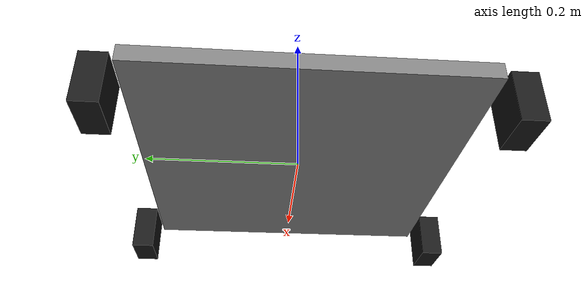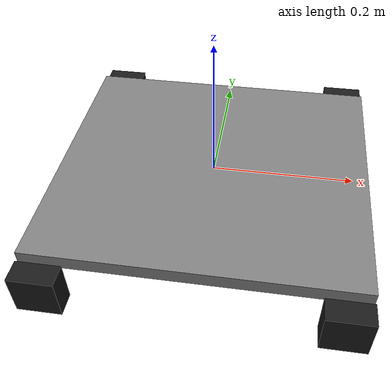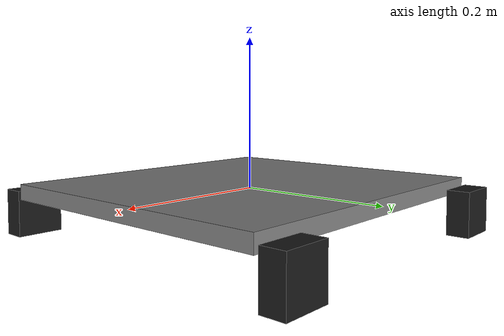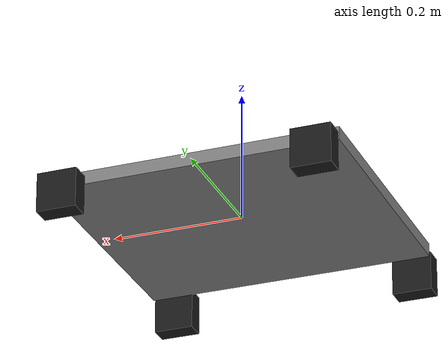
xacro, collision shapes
<?xml version="1.0"?>
<robot name="mecanumbot" xmlns:xacro="http://ros.org/wiki/xacro">

  <material name="darkgrey">
    <color rgba="0.1 0.1 0.1 1.0" />
  </material>
  <material name="grey">
    <color rgba="0.5 0.5 0.5 1.0" />
  </material>
  <material name="blue">
    <color rgba="0.0 0.0 0.8 1.0" />
  </material>

  <xacro:property name="M_PI" value="3.1415926535897931" />
  <xacro:property name="M_PI_2" value="1.570796327" />
  <xacro:property name="DEG_TO_RAD" value="0.017453293" />

  <xacro:property name="base_size_x" value="0.44" />
  <xacro:property name="base_size_y" value="0.40" />
  <xacro:property name="base_size_z" value="0.02" />
  <xacro:property name="base_mass" value="1.000" />

  <xacro:property name="wheel_radius" value="0.03" />
  <xacro:property name="wheel_width" value="0.03" />
  <xacro:property name="wheel_offset_x" value="0.19" />
  <xacro:property name="wheel_offset_y" value="0.22" />
  <xacro:property name="wheel_offset_z" value="-0.03" />
  <xacro:property name="wheel_mass" value="0.500" />

  <xacro:macro name="box_inertia" params="m x y z">
    <inertia ixx="${m*(y*y+z*z)/12}" ixy="0" ixz="0"
      iyy="${m*(x*x+z*z)/12}" iyz="0"
      izz="${m*(x*x+z*z)/12}"
    />
  </xacro:macro>
  <xacro:macro name="cylinder_inertia" params="m r w">
    <inertia ixx="${m*(3*r*r+w*w)/12}" ixy="0" ixz="0"
      iyy="${m*(3*r*r+w*w)/12}" iyz="0"
      izz="${m*r*r/2}"
    />
  </xacro:macro>

  <link name="base_footprint" />

  <joint name="base_joint" type="fixed">
    <parent link="base_footprint" />
    <child link="base_link" />
    <origin xyz="0 0 0" rpy="0 0 0" />
  </joint>
  <link name="base_link">
    <visual>
      <origin xyz="0 0 0" rpy="0 0 0" />
      <geometry>
        <box size="${base_size_x} ${base_size_y} ${base_size_z}" />
      </geometry>
      <material name="grey" />
    </visual>
    <collision>
      <origin xyz="0 0 0" rpy="0 0 0" />
      <geometry>
        <box size="${base_size_x} ${base_size_y} ${base_size_z}" />
      </geometry>
    </collision>
    <inertial>
      <origin xyz="0.0 0.0 0.0" rpy="0.0 0.0 0.0" />
      <mass value="${base_mass}" />
      <xacro:box_inertia m="${base_mass}" x="${base_size_x}" y="${base_size_y}" z="${base_size_z}" />
    </inertial>
  </link>

  <joint name="fl_wheel_joint" type="continuous">
    <parent link="base_link" />
    <child link="fl_wheel_link" />
    <origin xyz="${-wheel_offset_x} ${-wheel_offset_y} ${wheel_offset_z}" rpy="0 0 ${-M_PI/2}" />
    <axis xyz="1 0 0" rpy="0 0 0" />
  </joint>
  <link name="fl_wheel_link">
    <visual>
      <origin xyz="0 0 0" rpy="0 0 0" />
      <geometry>
        <mesh filename="package://mecanumbot_description/meshes/fl_wheel_link.STL"
          scale="0.6 0.6 0.6" />
      </geometry>
      <material name="darkgrey" />
    </visual>
    <collision>
      <origin xyz="0 0 0" rpy="0 0 0" />
      <geometry>
        <box size="${wheel_width} ${wheel_radius*2} ${wheel_radius*2}" />
      </geometry>
    </collision>
    <inertial>
      <origin xyz="0 0 0" rpy="0 0 0" />
      <mass value="${wheel_mass}" />
      <xacro:cylinder_inertia m="${wheel_mass}" r="${wheel_radius}" w="${wheel_width}" />
    </inertial>
  </link>

  <joint name="fr_wheel_joint" type="continuous">
    <parent link="base_link" />
    <child link="fr_wheel_link" />
    <origin xyz="${-wheel_offset_x} ${wheel_offset_y} ${wheel_offset_z}" rpy="0 0 ${M_PI/2}" />
    <axis xyz="-1 0 0" rpy="0 0 0" />
  </joint>
  <link name="fr_wheel_link">
    <visual>
      <origin xyz="0 0 0" rpy="0 0 0" />
      <geometry>
        <mesh filename="package://mecanumbot_description/meshes/fr_wheel_link.STL"
          scale="0.6 0.6 0.6" />
      </geometry>
      <material name="darkgrey" />
    </visual>
    <collision>
      <origin xyz="0 0 0" rpy="0 0 0" />
      <geometry>
        <box size="${wheel_width} ${wheel_radius*2} ${wheel_radius*2}" />
      </geometry>
    </collision>
    <inertial>
      <origin xyz="0 0 0" rpy="0 0 0" />
      <mass value="${wheel_mass}" />
      <xacro:cylinder_inertia m="${wheel_mass}" r="${wheel_radius}" w="${wheel_width}" />
    </inertial>
  </link>

  <joint name="rl_wheel_joint" type="continuous">
    <parent link="base_link" />
    <child link="rl_wheel_link" />
    <origin xyz="${wheel_offset_x} ${-wheel_offset_y} ${wheel_offset_z}" rpy="0 0 ${-M_PI/2}" />
    <axis xyz="1 0 0" rpy="0 0 0" />
  </joint>
  <link name="rl_wheel_link">
    <visual>
      <origin xyz="0 0 0" rpy="0 0 0" />
      <geometry>
        <mesh filename="package://mecanumbot_description/meshes/rl_wheel_link.STL"
          scale="0.6 0.6 0.6" />
      </geometry>
      <material name="darkgrey" />
    </visual>
    <collision>
      <origin xyz="0 0 0" rpy="0 0 0" />
      <geometry>
        <box size="${wheel_width} ${wheel_radius*2} ${wheel_radius*2}" />
      </geometry>
    </collision>
    <inertial>
      <origin xyz="0 0 0" rpy="0 0 0" />
      <mass value="${wheel_mass}" />
      <xacro:cylinder_inertia m="${wheel_mass}" r="${wheel_radius}" w="${wheel_width}" />
    </inertial>
  </link>

  <joint name="rr_wheel_joint" type="continuous">
    <parent link="base_link" />
    <child link="rr_wheel_link" />
    <origin xyz="${wheel_offset_x} ${wheel_offset_y} ${wheel_offset_z}" rpy="0 0 ${M_PI/2}" />
    <axis xyz="-1 0 0" rpy="0 0 0" />
  </joint>
  <link name="rr_wheel_link">
    <visual>
      <origin xyz="0 0 0" rpy="0 0 0" />
      <geometry>
        <mesh filename="package://mecanumbot_description/meshes/rr_wheel_link.STL"
          scale="0.6 0.6 0.6" />
      </geometry>
      <material name="darkgrey" />
    </visual>
    <collision>
      <origin xyz="0 0 0" rpy="0 0 0" />
      <geometry>
        <box size="${wheel_width} ${wheel_radius*2} ${wheel_radius*2}" />
      </geometry>
    </collision>
    <inertial>
      <origin xyz="0 0 0" rpy="0 0 0" />
      <mass value="${wheel_mass}" />
      <xacro:cylinder_inertia m="${wheel_mass}" r="${wheel_radius}" w="${wheel_width}" />
    </inertial>
  </link>

  <ros2_control name="mecanumbot" type="system">
    <hardware>
      <plugin>mecanumbot_hardware/MecanumbotHardware</plugin>
      <param name="serial_port">/dev/ttyACM0</param>
    </hardware>
    <joint name="fl_wheel_joint">
      <command_interface name="velocity" />
      <state_interface name="position" />
      <state_interface name="velocity" />
      <param name="motor_id">1</param>
    </joint>
    <joint name="fr_wheel_joint">
      <command_interface name="velocity" />
      <state_interface name="position" />
      <state_interface name="velocity" />
      <param name="motor_id">2</param>
    </joint>
    <joint name="rl_wheel_joint">
      <command_interface name="velocity" />
      <state_interface name="position" />
      <state_interface name="velocity" />
      <param name="motor_id">4</param>
    </joint>
    <joint name="rr_wheel_joint">
      <command_interface name="velocity" />
      <state_interface name="position" />
      <state_interface name="velocity" />
      <param name="motor_id">8</param>
    </joint>
  </ros2_control>
</robot>
